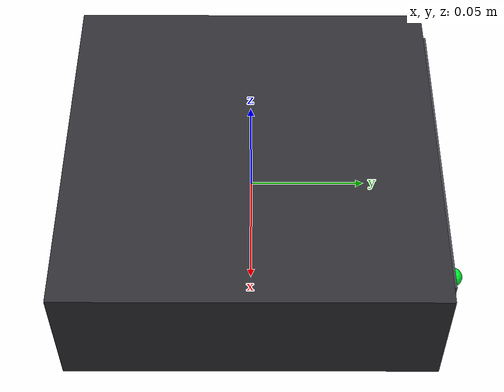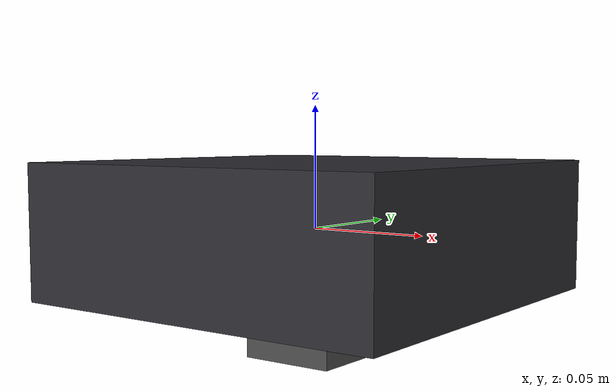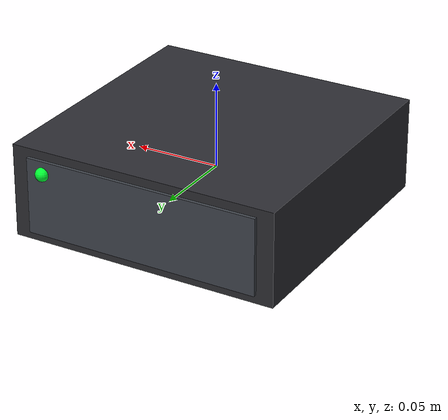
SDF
<?xml version="1.0" encoding="UTF-8"?>
<sdf version="1.9">
  <model name="echoguard">
    <static>true</static>

    <link name="base_link">
      <!-- Main radar face plate -->
      <collision name="col_body">
        <geometry>
          <box><size>0.16 0.16 0.055</size></box>
        </geometry>
      </collision>
      <visual name="vis_body">
        <geometry>
          <box><size>0.16 0.16 0.055</size></box>
        </geometry>
        <material>
          <!-- Dark gunmetal grey — EchoGuard housing colour -->
          <ambient>0.18 0.18 0.20 1</ambient>
          <diffuse>0.18 0.18 0.20 1</diffuse>
          <specular>0.30 0.30 0.32 1</specular>
        </material>
      </visual>

      <!-- Antenna array face (slightly lighter panel on front) -->
      <visual name="vis_antenna_face">
        <pose>0 0.081 0 0 0 0</pose>
        <geometry>
          <box><size>0.14 0.002 0.045</size></box>
        </geometry>
        <material>
          <ambient>0.25 0.27 0.30 1</ambient>
          <diffuse>0.25 0.27 0.30 1</diffuse>
        </material>
      </visual>

      <!-- Mounting bracket (short stem below the unit) -->
      <visual name="vis_mount">
        <pose>0 0 -0.04 0 0 0</pose>
        <geometry>
          <box><size>0.04 0.04 0.025</size></box>
        </geometry>
        <material>
          <ambient>0.30 0.30 0.30 1</ambient>
          <diffuse>0.30 0.30 0.30 1</diffuse>
        </material>
      </visual>

      <!-- Status LED (green dot) -->
      <visual name="vis_led">
        <pose>0.06 0.082 0.015 0 0 0</pose>
        <geometry>
          <sphere><radius>0.004</radius></sphere>
        </geometry>
        <material>
          <ambient>0.0 1.0 0.2 1</ambient>
          <diffuse>0.0 1.0 0.2 1</diffuse>
          <emissive>0.0 0.8 0.1 1</emissive>
        </material>
      </visual>
    </link>

    <plugin filename="echoguard_radar_plugin"
            name="acsdg_sensors_hw::EchoGuardRadarPlugin">
      <sensor_id>0</sensor_id>       <!-- overridden per instance -->
      <update_rate>25.0</update_rate>
    </plugin>

  </model>
</sdf>
